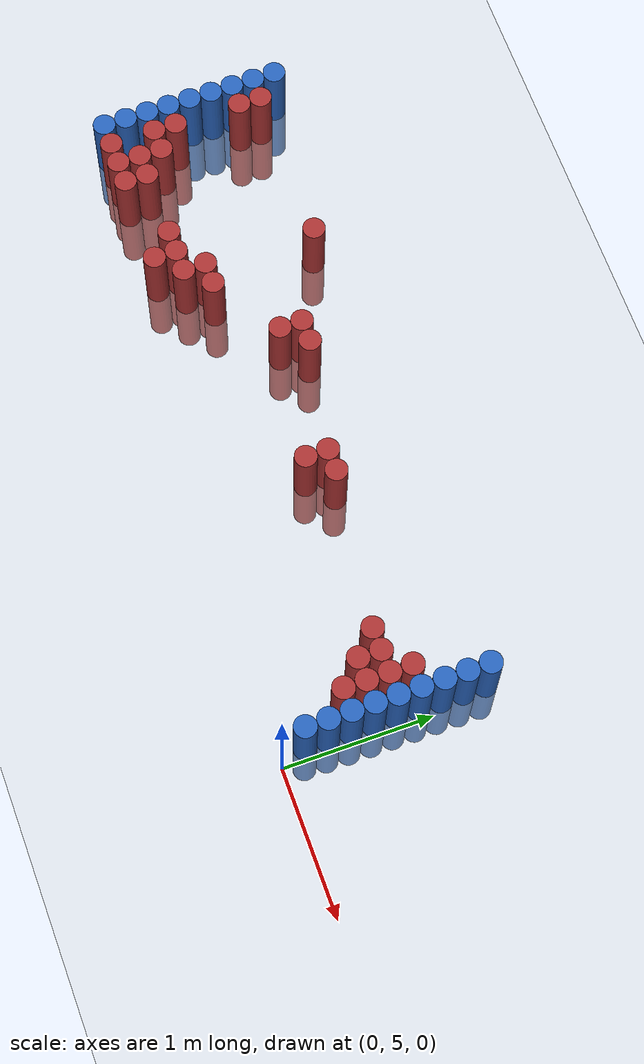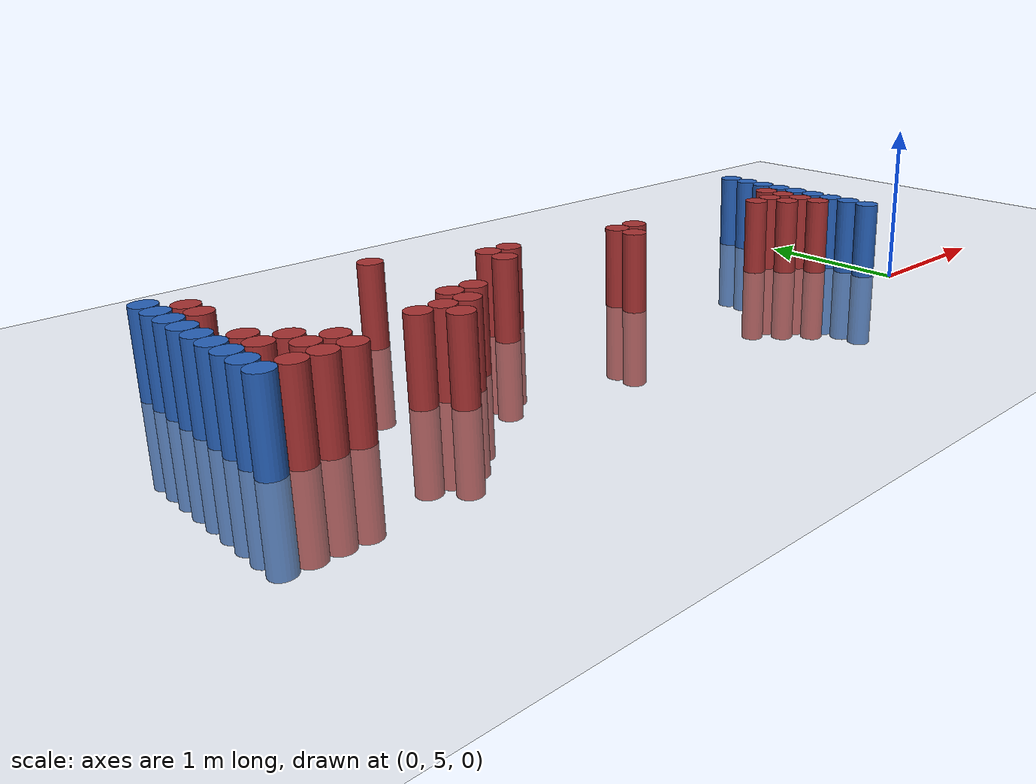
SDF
<sdf version="1.6">
 <world name="default">
  <model name="ground_plane">
   <static>1</static>
   <link name="link">
    <collision name="collision">
     <geometry><plane><normal>0 0 1</normal><size>100 100</size></plane></geometry>
     <surface><friction><ode><mu>100</mu><mu2>50</mu2></ode></friction></surface>
    </collision>
    <visual name="visual">
     <cast_shadows>0</cast_shadows>
     <geometry><plane><normal>0 0 1</normal><size>100 100</size></plane></geometry>
     <material>
      <script><uri>file://media/materials/scripts/gazebo.material</uri><name>Gazebo/Grey</name></script>
     </material>
    </visual>
   </link>
  </model>
  <model name="unit_cylinder_97">
   <static>1</static>
   <pose>-4.425000 5.325000 0.000000 0.000000 0.000000 0.000000</pose>
   <link name="link">
    <inertial>
     <mass>1</mass>
     <inertia><ixx>0.145833</ixx><ixy>0</ixy><ixz>0</ixz><iyy>0.145833</iyy><iyz>0</iyz><izz>0.125</izz></inertia>
    </inertial>
    <collision name="collision">
     <geometry><cylinder><radius>0.075000</radius><length>1</length></cylinder></geometry>
    </collision>
    <visual name="visual">
     <geometry><cylinder><radius>0.075000</radius><length>1</length></cylinder></geometry>
     <material>
      <ambient>0.152000 0.379000 0.720000 1</ambient>
      <diffuse>0.152000 0.379000 0.720000 1</diffuse>
     </material>
     <material>
      <script><name>Gazebo/Grey</name><uri>file://media/materials/scripts/gazebo.material</uri></script>
     </material>
    </visual>
   </link>
  </model>
  <model name="unit_cylinder_98">
   <static>1</static>
   <pose>-4.425000 5.475000 0.000000 0.000000 0.000000 0.000000</pose>
   <link name="link">
    <inertial>
     <mass>1</mass>
     <inertia><ixx>0.145833</ixx><ixy>0</ixy><ixz>0</ixz><iyy>0.145833</iyy><iyz>0</iyz><izz>0.125</izz></inertia>
    </inertial>
    <collision name="collision">
     <geometry><cylinder><radius>0.075000</radius><length>1</length></cylinder></geometry>
    </collision>
    <visual name="visual">
     <geometry><cylinder><radius>0.075000</radius><length>1</length></cylinder></geometry>
     <material>
      <ambient>0.152000 0.379000 0.720000 1</ambient>
      <diffuse>0.152000 0.379000 0.720000 1</diffuse>
     </material>
     <material>
      <script><name>Gazebo/Grey</name><uri>file://media/materials/scripts/gazebo.material</uri></script>
     </material>
    </visual>
   </link>
  </model>
  <model name="unit_cylinder_99">
   <static>1</static>
   <pose>-4.425000 5.625000 0.000000 0.000000 0.000000 0.000000</pose>
   <link name="link">
    <inertial>
     <mass>1</mass>
     <inertia><ixx>0.145833</ixx><ixy>0</ixy><ixz>0</ixz><iyy>0.145833</iyy><iyz>0</iyz><izz>0.125</izz></inertia>
    </inertial>
    <collision name="collision">
     <geometry><cylinder><radius>0.075000</radius><length>1</length></cylinder></geometry>
    </collision>
    <visual name="visual">
     <geometry><cylinder><radius>0.075000</radius><length>1</length></cylinder></geometry>
     <material>
      <ambient>0.152000 0.379000 0.720000 1</ambient>
      <diffuse>0.152000 0.379000 0.720000 1</diffuse>
     </material>
     <material>
      <script><name>Gazebo/Grey</name><uri>file://media/materials/scripts/gazebo.material</uri></script>
     </material>
    </visual>
   </link>
  </model>
  <model name="unit_cylinder_100">
   <static>1</static>
   <pose>-4.425000 5.775000 0.000000 0.000000 0.000000 0.000000</pose>
   <link name="link">
    <inertial>
     <mass>1</mass>
     <inertia><ixx>0.145833</ixx><ixy>0</ixy><ixz>0</ixz><iyy>0.145833</iyy><iyz>0</iyz><izz>0.125</izz></inertia>
    </inertial>
    <collision name="collision">
     <geometry><cylinder><radius>0.075000</radius><length>1</length></cylinder></geometry>
    </collision>
    <visual name="visual">
     <geometry><cylinder><radius>0.075000</radius><length>1</length></cylinder></geometry>
     <material>
      <ambient>0.152000 0.379000 0.720000 1</ambient>
      <diffuse>0.152000 0.379000 0.720000 1</diffuse>
     </material>
     <material>
      <script><name>Gazebo/Grey</name><uri>file://media/materials/scripts/gazebo.material</uri></script>
     </material>
    </visual>
   </link>
  </model>
  <model name="unit_cylinder_101">
   <static>1</static>
   <pose>-4.425000 5.925000 0.000000 0.000000 0.000000 0.000000</pose>
   <link name="link">
    <inertial>
     <mass>1</mass>
     <inertia><ixx>0.145833</ixx><ixy>0</ixy><ixz>0</ixz><iyy>0.145833</iyy><iyz>0</iyz><izz>0.125</izz></inertia>
    </inertial>
    <collision name="collision">
     <geometry><cylinder><radius>0.075000</radius><length>1</length></cylinder></geometry>
    </collision>
    <visual name="visual">
     <geometry><cylinder><radius>0.075000</radius><length>1</length></cylinder></geometry>
     <material>
      <ambient>0.152000 0.379000 0.720000 1</ambient>
      <diffuse>0.152000 0.379000 0.720000 1</diffuse>
     </material>
     <material>
      <script><name>Gazebo/Grey</name><uri>file://media/materials/scripts/gazebo.material</uri></script>
     </material>
    </visual>
   </link>
  </model>
  <model name="unit_cylinder_102">
   <static>1</static>
   <pose>-4.425000 6.075000 0.000000 0.000000 0.000000 0.000000</pose>
   <link name="link">
    <inertial>
     <mass>1</mass>
     <inertia><ixx>0.145833</ixx><ixy>0</ixy><ixz>0</ixz><iyy>0.145833</iyy><iyz>0</iyz><izz>0.125</izz></inertia>
    </inertial>
    <collision name="collision">
     <geometry><cylinder><radius>0.075000</radius><length>1</length></cylinder></geometry>
    </collision>
    <visual name="visual">
     <geometry><cylinder><radius>0.075000</radius><length>1</length></cylinder></geometry>
     <material>
      <ambient>0.152000 0.379000 0.720000 1</ambient>
      <diffuse>0.152000 0.379000 0.720000 1</diffuse>
     </material>
     <material>
      <script><name>Gazebo/Grey</name><uri>file://media/materials/scripts/gazebo.material</uri></script>
     </material>
    </visual>
   </link>
  </model>
  <model name="unit_cylinder_103">
   <static>1</static>
   <pose>-4.425000 6.225000 0.000000 0.000000 0.000000 0.000000</pose>
   <link name="link">
    <inertial>
     <mass>1</mass>
     <inertia><ixx>0.145833</ixx><ixy>0</ixy><ixz>0</ixz><iyy>0.145833</iyy><iyz>0</iyz><izz>0.125</izz></inertia>
    </inertial>
    <collision name="collision">
     <geometry><cylinder><radius>0.075000</radius><length>1</length></cylinder></geometry>
    </collision>
    <visual name="visual">
     <geometry><cylinder><radius>0.075000</radius><length>1</length></cylinder></geometry>
     <material>
      <ambient>0.152000 0.379000 0.720000 1</ambient>
      <diffuse>0.152000 0.379000 0.720000 1</diffuse>
     </material>
     <material>
      <script><name>Gazebo/Grey</name><uri>file://media/materials/scripts/gazebo.material</uri></script>
     </material>
    </visual>
   </link>
  </model>
  <model name="unit_cylinder_104">
   <static>1</static>
   <pose>-4.425000 6.375000 0.000000 0.000000 0.000000 0.000000</pose>
   <link name="link">
    <inertial>
     <mass>1</mass>
     <inertia><ixx>0.145833</ixx><ixy>0</ixy><ixz>0</ixz><iyy>0.145833</iyy><iyz>0</iyz><izz>0.125</izz></inertia>
    </inertial>
    <collision name="collision">
     <geometry><cylinder><radius>0.075000</radius><length>1</length></cylinder></geometry>
    </collision>
    <visual name="visual">
     <geometry><cylinder><radius>0.075000</radius><length>1</length></cylinder></geometry>
     <material>
      <ambient>0.152000 0.379000 0.720000 1</ambient>
      <diffuse>0.152000 0.379000 0.720000 1</diffuse>
     </material>
     <material>
      <script><name>Gazebo/Grey</name><uri>file://media/materials/scripts/gazebo.material</uri></script>
     </material>
    </visual>
   </link>
  </model>
  <model name="unit_cylinder_105">
   <static>1</static>
   <pose>-4.425000 6.525000 0.000000 0.000000 0.000000 0.000000</pose>
   <link name="link">
    <inertial>
     <mass>1</mass>
     <inertia><ixx>0.145833</ixx><ixy>0</ixy><ixz>0</ixz><iyy>0.145833</iyy><iyz>0</iyz><izz>0.125</izz></inertia>
    </inertial>
    <collision name="collision">
     <geometry><cylinder><radius>0.075000</radius><length>1</length></cylinder></geometry>
    </collision>
    <visual name="visual">
     <geometry><cylinder><radius>0.075000</radius><length>1</length></cylinder></geometry>
     <material>
      <ambient>0.152000 0.379000 0.720000 1</ambient>
      <diffuse>0.152000 0.379000 0.720000 1</diffuse>
     </material>
     <material>
      <script><name>Gazebo/Grey</name><uri>file://media/materials/scripts/gazebo.material</uri></script>
     </material>
    </visual>
   </link>
  </model>
  <model name="unit_cylinder_127">
   <static>1</static>
   <pose>-4.275000 5.325000 0.000000 0.000000 0.000000 0.000000</pose>
   <link name="link">
    <inertial>
     <mass>1</mass>
     <inertia><ixx>0.145833</ixx><ixy>0</ixy><ixz>0</ixz><iyy>0.145833</iyy><iyz>0</iyz><izz>0.125</izz></inertia>
    </inertial>
    <collision name="collision">
     <geometry><cylinder><radius>0.075000</radius><length>1</length></cylinder></geometry>
    </collision>
    <visual name="visual">
     <geometry><cylinder><radius>0.075000</radius><length>1</length></cylinder></geometry>
     <material>
      <ambient>0.648000 0.192000 0.192000 1</ambient>
      <diffuse>0.648000 0.192000 0.192000 1</diffuse>
     </material>
     <material>
      <script><name>Gazebo/Grey</name><uri>file://media/materials/scripts/gazebo.material</uri></script>
     </material>
    </visual>
   </link>
  </model>
  <model name="unit_cylinder_128">
   <static>1</static>
   <pose>-4.275000 5.625000 0.000000 0.000000 0.000000 0.000000</pose>
   <link name="link">
    <inertial>
     <mass>1</mass>
     <inertia><ixx>0.145833</ixx><ixy>0</ixy><ixz>0</ixz><iyy>0.145833</iyy><iyz>0</iyz><izz>0.125</izz></inertia>
    </inertial>
    <collision name="collision">
     <geometry><cylinder><radius>0.075000</radius><length>1</length></cylinder></geometry>
    </collision>
    <visual name="visual">
     <geometry><cylinder><radius>0.075000</radius><length>1</length></cylinder></geometry>
     <material>
      <ambient>0.648000 0.192000 0.192000 1</ambient>
      <diffuse>0.648000 0.192000 0.192000 1</diffuse>
     </material>
     <material>
      <script><name>Gazebo/Grey</name><uri>file://media/materials/scripts/gazebo.material</uri></script>
     </material>
    </visual>
   </link>
  </model>
  <model name="unit_cylinder_129">
   <static>1</static>
   <pose>-4.275000 5.775000 0.000000 0.000000 0.000000 0.000000</pose>
   <link name="link">
    <inertial>
     <mass>1</mass>
     <inertia><ixx>0.145833</ixx><ixy>0</ixy><ixz>0</ixz><iyy>0.145833</iyy><iyz>0</iyz><izz>0.125</izz></inertia>
    </inertial>
    <collision name="collision">
     <geometry><cylinder><radius>0.075000</radius><length>1</length></cylinder></geometry>
    </collision>
    <visual name="visual">
     <geometry><cylinder><radius>0.075000</radius><length>1</length></cylinder></geometry>
     <material>
      <ambient>0.648000 0.192000 0.192000 1</ambient>
      <diffuse>0.648000 0.192000 0.192000 1</diffuse>
     </material>
     <material>
      <script><name>Gazebo/Grey</name><uri>file://media/materials/scripts/gazebo.material</uri></script>
     </material>
    </visual>
   </link>
  </model>
  <model name="unit_cylinder_130">
   <static>1</static>
   <pose>-4.275000 6.225000 0.000000 0.000000 0.000000 0.000000</pose>
   <link name="link">
    <inertial>
     <mass>1</mass>
     <inertia><ixx>0.145833</ixx><ixy>0</ixy><ixz>0</ixz><iyy>0.145833</iyy><iyz>0</iyz><izz>0.125</izz></inertia>
    </inertial>
    <collision name="collision">
     <geometry><cylinder><radius>0.075000</radius><length>1</length></cylinder></geometry>
    </collision>
    <visual name="visual">
     <geometry><cylinder><radius>0.075000</radius><length>1</length></cylinder></geometry>
     <material>
      <ambient>0.648000 0.192000 0.192000 1</ambient>
      <diffuse>0.648000 0.192000 0.192000 1</diffuse>
     </material>
     <material>
      <script><name>Gazebo/Grey</name><uri>file://media/materials/scripts/gazebo.material</uri></script>
     </material>
    </visual>
   </link>
  </model>
  <model name="unit_cylinder_131">
   <static>1</static>
   <pose>-4.275000 6.375000 0.000000 0.000000 0.000000 0.000000</pose>
   <link name="link">
    <inertial>
     <mass>1</mass>
     <inertia><ixx>0.145833</ixx><ixy>0</ixy><ixz>0</ixz><iyy>0.145833</iyy><iyz>0</iyz><izz>0.125</izz></inertia>
    </inertial>
    <collision name="collision">
     <geometry><cylinder><radius>0.075000</radius><length>1</length></cylinder></geometry>
    </collision>
    <visual name="visual">
     <geometry><cylinder><radius>0.075000</radius><length>1</length></cylinder></geometry>
     <material>
      <ambient>0.648000 0.192000 0.192000 1</ambient>
      <diffuse>0.648000 0.192000 0.192000 1</diffuse>
     </material>
     <material>
      <script><name>Gazebo/Grey</name><uri>file://media/materials/scripts/gazebo.material</uri></script>
     </material>
    </visual>
   </link>
  </model>
  <model name="unit_cylinder_144">
   <static>1</static>
   <pose>-4.125000 5.325000 0.000000 0.000000 0.000000 0.000000</pose>
   <link name="link">
    <inertial>
     <mass>1</mass>
     <inertia><ixx>0.145833</ixx><ixy>0</ixy><ixz>0</ixz><iyy>0.145833</iyy><iyz>0</iyz><izz>0.125</izz></inertia>
    </inertial>
    <collision name="collision">
     <geometry><cylinder><radius>0.075000</radius><length>1</length></cylinder></geometry>
    </collision>
    <visual name="visual">
     <geometry><cylinder><radius>0.075000</radius><length>1</length></cylinder></geometry>
     <material>
      <ambient>0.648000 0.192000 0.192000 1</ambient>
      <diffuse>0.648000 0.192000 0.192000 1</diffuse>
     </material>
     <material>
      <script><name>Gazebo/Grey</name><uri>file://media/materials/scripts/gazebo.material</uri></script>
     </material>
    </visual>
   </link>
  </model>
  <model name="unit_cylinder_145">
   <static>1</static>
   <pose>-4.125000 5.475000 0.000000 0.000000 0.000000 0.000000</pose>
   <link name="link">
    <inertial>
     <mass>1</mass>
     <inertia><ixx>0.145833</ixx><ixy>0</ixy><ixz>0</ixz><iyy>0.145833</iyy><iyz>0</iyz><izz>0.125</izz></inertia>
    </inertial>
    <collision name="collision">
     <geometry><cylinder><radius>0.075000</radius><length>1</length></cylinder></geometry>
    </collision>
    <visual name="visual">
     <geometry><cylinder><radius>0.075000</radius><length>1</length></cylinder></geometry>
     <material>
      <ambient>0.648000 0.192000 0.192000 1</ambient>
      <diffuse>0.648000 0.192000 0.192000 1</diffuse>
     </material>
     <material>
      <script><name>Gazebo/Grey</name><uri>file://media/materials/scripts/gazebo.material</uri></script>
     </material>
    </visual>
   </link>
  </model>
  <model name="unit_cylinder_146">
   <static>1</static>
   <pose>-4.125000 5.625000 0.000000 0.000000 0.000000 0.000000</pose>
   <link name="link">
    <inertial>
     <mass>1</mass>
     <inertia><ixx>0.145833</ixx><ixy>0</ixy><ixz>0</ixz><iyy>0.145833</iyy><iyz>0</iyz><izz>0.125</izz></inertia>
    </inertial>
    <collision name="collision">
     <geometry><cylinder><radius>0.075000</radius><length>1</length></cylinder></geometry>
    </collision>
    <visual name="visual">
     <geometry><cylinder><radius>0.075000</radius><length>1</length></cylinder></geometry>
     <material>
      <ambient>0.648000 0.192000 0.192000 1</ambient>
      <diffuse>0.648000 0.192000 0.192000 1</diffuse>
     </material>
     <material>
      <script><name>Gazebo/Grey</name><uri>file://media/materials/scripts/gazebo.material</uri></script>
     </material>
    </visual>
   </link>
  </model>
  <model name="unit_cylinder_156">
   <static>1</static>
   <pose>-3.975000 5.325000 0.000000 0.000000 0.000000 0.000000</pose>
   <link name="link">
    <inertial>
     <mass>1</mass>
     <inertia><ixx>0.145833</ixx><ixy>0</ixy><ixz>0</ixz><iyy>0.145833</iyy><iyz>0</iyz><izz>0.125</izz></inertia>
    </inertial>
    <collision name="collision">
     <geometry><cylinder><radius>0.075000</radius><length>1</length></cylinder></geometry>
    </collision>
    <visual name="visual">
     <geometry><cylinder><radius>0.075000</radius><length>1</length></cylinder></geometry>
     <material>
      <ambient>0.648000 0.192000 0.192000 1</ambient>
      <diffuse>0.648000 0.192000 0.192000 1</diffuse>
     </material>
     <material>
      <script><name>Gazebo/Grey</name><uri>file://media/materials/scripts/gazebo.material</uri></script>
     </material>
    </visual>
   </link>
  </model>
  <model name="unit_cylinder_157">
   <static>1</static>
   <pose>-3.975000 5.475000 0.000000 0.000000 0.000000 0.000000</pose>
   <link name="link">
    <inertial>
     <mass>1</mass>
     <inertia><ixx>0.145833</ixx><ixy>0</ixy><ixz>0</ixz><iyy>0.145833</iyy><iyz>0</iyz><izz>0.125</izz></inertia>
    </inertial>
    <collision name="collision">
     <geometry><cylinder><radius>0.075000</radius><length>1</length></cylinder></geometry>
    </collision>
    <visual name="visual">
     <geometry><cylinder><radius>0.075000</radius><length>1</length></cylinder></geometry>
     <material>
      <ambient>0.648000 0.192000 0.192000 1</ambient>
      <diffuse>0.648000 0.192000 0.192000 1</diffuse>
     </material>
     <material>
      <script><name>Gazebo/Grey</name><uri>file://media/materials/scripts/gazebo.material</uri></script>
     </material>
    </visual>
   </link>
  </model>
  <model name="unit_cylinder_160">
   <static>1</static>
   <pose>-3.525000 5.475000 0.000000 0.000000 0.000000 0.000000</pose>
   <link name="link">
    <inertial>
     <mass>1</mass>
     <inertia><ixx>0.145833</ixx><ixy>0</ixy><ixz>0</ixz><iyy>0.145833</iyy><iyz>0</iyz><izz>0.125</izz></inertia>
    </inertial>
    <collision name="collision">
     <geometry><cylinder><radius>0.075000</radius><length>1</length></cylinder></geometry>
    </collision>
    <visual name="visual">
     <geometry><cylinder><radius>0.075000</radius><length>1</length></cylinder></geometry>
     <material>
      <ambient>0.648000 0.192000 0.192000 1</ambient>
      <diffuse>0.648000 0.192000 0.192000 1</diffuse>
     </material>
     <material>
      <script><name>Gazebo/Grey</name><uri>file://media/materials/scripts/gazebo.material</uri></script>
     </material>
    </visual>
   </link>
  </model>
  <model name="unit_cylinder_161">
   <static>1</static>
   <pose>-3.375000 5.325000 0.000000 0.000000 0.000000 0.000000</pose>
   <link name="link">
    <inertial>
     <mass>1</mass>
     <inertia><ixx>0.145833</ixx><ixy>0</ixy><ixz>0</ixz><iyy>0.145833</iyy><iyz>0</iyz><izz>0.125</izz></inertia>
    </inertial>
    <collision name="collision">
     <geometry><cylinder><radius>0.075000</radius><length>1</length></cylinder></geometry>
    </collision>
    <visual name="visual">
     <geometry><cylinder><radius>0.075000</radius><length>1</length></cylinder></geometry>
     <material>
      <ambient>0.648000 0.192000 0.192000 1</ambient>
      <diffuse>0.648000 0.192000 0.192000 1</diffuse>
     </material>
     <material>
      <script><name>Gazebo/Grey</name><uri>file://media/materials/scripts/gazebo.material</uri></script>
     </material>
    </visual>
   </link>
  </model>
  <model name="unit_cylinder_162">
   <static>1</static>
   <pose>-3.375000 5.475000 0.000000 0.000000 0.000000 0.000000</pose>
   <link name="link">
    <inertial>
     <mass>1</mass>
     <inertia><ixx>0.145833</ixx><ixy>0</ixy><ixz>0</ixz><iyy>0.145833</iyy><iyz>0</iyz><izz>0.125</izz></inertia>
    </inertial>
    <collision name="collision">
     <geometry><cylinder><radius>0.075000</radius><length>1</length></cylinder></geometry>
    </collision>
    <visual name="visual">
     <geometry><cylinder><radius>0.075000</radius><length>1</length></cylinder></geometry>
     <material>
      <ambient>0.648000 0.192000 0.192000 1</ambient>
      <diffuse>0.648000 0.192000 0.192000 1</diffuse>
     </material>
     <material>
      <script><name>Gazebo/Grey</name><uri>file://media/materials/scripts/gazebo.material</uri></script>
     </material>
    </visual>
   </link>
  </model>
  <model name="unit_cylinder_165">
   <static>1</static>
   <pose>-3.225000 5.475000 0.000000 0.000000 0.000000 0.000000</pose>
   <link name="link">
    <inertial>
     <mass>1</mass>
     <inertia><ixx>0.145833</ixx><ixy>0</ixy><ixz>0</ixz><iyy>0.145833</iyy><iyz>0</iyz><izz>0.125</izz></inertia>
    </inertial>
    <collision name="collision">
     <geometry><cylinder><radius>0.075000</radius><length>1</length></cylinder></geometry>
    </collision>
    <visual name="visual">
     <geometry><cylinder><radius>0.075000</radius><length>1</length></cylinder></geometry>
     <material>
      <ambient>0.648000 0.192000 0.192000 1</ambient>
      <diffuse>0.648000 0.192000 0.192000 1</diffuse>
     </material>
     <material>
      <script><name>Gazebo/Grey</name><uri>file://media/materials/scripts/gazebo.material</uri></script>
     </material>
    </visual>
   </link>
  </model>
  <model name="unit_cylinder_166">
   <static>1</static>
   <pose>-3.225000 5.625000 0.000000 0.000000 0.000000 0.000000</pose>
   <link name="link">
    <inertial>
     <mass>1</mass>
     <inertia><ixx>0.145833</ixx><ixy>0</ixy><ixz>0</ixz><iyy>0.145833</iyy><iyz>0</iyz><izz>0.125</izz></inertia>
    </inertial>
    <collision name="collision">
     <geometry><cylinder><radius>0.075000</radius><length>1</length></cylinder></geometry>
    </collision>
    <visual name="visual">
     <geometry><cylinder><radius>0.075000</radius><length>1</length></cylinder></geometry>
     <material>
      <ambient>0.648000 0.192000 0.192000 1</ambient>
      <diffuse>0.648000 0.192000 0.192000 1</diffuse>
     </material>
     <material>
      <script><name>Gazebo/Grey</name><uri>file://media/materials/scripts/gazebo.material</uri></script>
     </material>
    </visual>
   </link>
  </model>
  <model name="unit_cylinder_167">
   <static>1</static>
   <pose>-3.225000 6.375000 0.000000 0.000000 0.000000 0.000000</pose>
   <link name="link">
    <inertial>
     <mass>1</mass>
     <inertia><ixx>0.145833</ixx><ixy>0</ixy><ixz>0</ixz><iyy>0.145833</iyy><iyz>0</iyz><izz>0.125</izz></inertia>
    </inertial>
    <collision name="collision">
     <geometry><cylinder><radius>0.075000</radius><length>1</length></cylinder></geometry>
    </collision>
    <visual name="visual">
     <geometry><cylinder><radius>0.075000</radius><length>1</length></cylinder></geometry>
     <material>
      <ambient>0.648000 0.192000 0.192000 1</ambient>
      <diffuse>0.648000 0.192000 0.192000 1</diffuse>
     </material>
     <material>
      <script><name>Gazebo/Grey</name><uri>file://media/materials/scripts/gazebo.material</uri></script>
     </material>
    </visual>
   </link>
  </model>
  <model name="unit_cylinder_173">
   <static>1</static>
   <pose>-3.075000 5.625000 0.000000 0.000000 0.000000 0.000000</pose>
   <link name="link">
    <inertial>
     <mass>1</mass>
     <inertia><ixx>0.145833</ixx><ixy>0</ixy><ixz>0</ixz><iyy>0.145833</iyy><iyz>0</iyz><izz>0.125</izz></inertia>
    </inertial>
    <collision name="collision">
     <geometry><cylinder><radius>0.075000</radius><length>1</length></cylinder></geometry>
    </collision>
    <visual name="visual">
     <geometry><cylinder><radius>0.075000</radius><length>1</length></cylinder></geometry>
     <material>
      <ambient>0.648000 0.192000 0.192000 1</ambient>
      <diffuse>0.648000 0.192000 0.192000 1</diffuse>
     </material>
     <material>
      <script><name>Gazebo/Grey</name><uri>file://media/materials/scripts/gazebo.material</uri></script>
     </material>
    </visual>
   </link>
  </model>
  <model name="unit_cylinder_185">
   <static>1</static>
   <pose>-2.625000 5.925000 0.000000 0.000000 0.000000 0.000000</pose>
   <link name="link">
    <inertial>
     <mass>1</mass>
     <inertia><ixx>0.145833</ixx><ixy>0</ixy><ixz>0</ixz><iyy>0.145833</iyy><iyz>0</iyz><izz>0.125</izz></inertia>
    </inertial>
    <collision name="collision">
     <geometry><cylinder><radius>0.075000</radius><length>1</length></cylinder></geometry>
    </collision>
    <visual name="visual">
     <geometry><cylinder><radius>0.075000</radius><length>1</length></cylinder></geometry>
     <material>
      <ambient>0.648000 0.192000 0.192000 1</ambient>
      <diffuse>0.648000 0.192000 0.192000 1</diffuse>
     </material>
     <material>
      <script><name>Gazebo/Grey</name><uri>file://media/materials/scripts/gazebo.material</uri></script>
     </material>
    </visual>
   </link>
  </model>
  <model name="unit_cylinder_186">
   <static>1</static>
   <pose>-2.625000 6.075000 0.000000 0.000000 0.000000 0.000000</pose>
   <link name="link">
    <inertial>
     <mass>1</mass>
     <inertia><ixx>0.145833</ixx><ixy>0</ixy><ixz>0</ixz><iyy>0.145833</iyy><iyz>0</iyz><izz>0.125</izz></inertia>
    </inertial>
    <collision name="collision">
     <geometry><cylinder><radius>0.075000</radius><length>1</length></cylinder></geometry>
    </collision>
    <visual name="visual">
     <geometry><cylinder><radius>0.075000</radius><length>1</length></cylinder></geometry>
     <material>
      <ambient>0.648000 0.192000 0.192000 1</ambient>
      <diffuse>0.648000 0.192000 0.192000 1</diffuse>
     </material>
     <material>
      <script><name>Gazebo/Grey</name><uri>file://media/materials/scripts/gazebo.material</uri></script>
     </material>
    </visual>
   </link>
  </model>
  <model name="unit_cylinder_188">
   <static>1</static>
   <pose>-2.475000 6.075000 0.000000 0.000000 0.000000 0.000000</pose>
   <link name="link">
    <inertial>
     <mass>1</mass>
     <inertia><ixx>0.145833</ixx><ixy>0</ixy><ixz>0</ixz><iyy>0.145833</iyy><iyz>0</iyz><izz>0.125</izz></inertia>
    </inertial>
    <collision name="collision">
     <geometry><cylinder><radius>0.075000</radius><length>1</length></cylinder></geometry>
    </collision>
    <visual name="visual">
     <geometry><cylinder><radius>0.075000</radius><length>1</length></cylinder></geometry>
     <material>
      <ambient>0.648000 0.192000 0.192000 1</ambient>
      <diffuse>0.648000 0.192000 0.192000 1</diffuse>
     </material>
     <material>
      <script><name>Gazebo/Grey</name><uri>file://media/materials/scripts/gazebo.material</uri></script>
     </material>
    </visual>
   </link>
  </model>
  <model name="unit_cylinder_200">
   <static>1</static>
   <pose>-1.725000 5.775000 0.000000 0.000000 0.000000 0.000000</pose>
   <link name="link">
    <inertial>
     <mass>1</mass>
     <inertia><ixx>0.145833</ixx><ixy>0</ixy><ixz>0</ixz><iyy>0.145833</iyy><iyz>0</iyz><izz>0.125</izz></inertia>
    </inertial>
    <collision name="collision">
     <geometry><cylinder><radius>0.075000</radius><length>1</length></cylinder></geometry>
    </collision>
    <visual name="visual">
     <geometry><cylinder><radius>0.075000</radius><length>1</length></cylinder></geometry>
     <material>
      <ambient>0.648000 0.192000 0.192000 1</ambient>
      <diffuse>0.648000 0.192000 0.192000 1</diffuse>
     </material>
     <material>
      <script><name>Gazebo/Grey</name><uri>file://media/materials/scripts/gazebo.material</uri></script>
     </material>
    </visual>
   </link>
  </model>
  <model name="unit_cylinder_201">
   <static>1</static>
   <pose>-1.725000 5.925000 0.000000 0.000000 0.000000 0.000000</pose>
   <link name="link">
    <inertial>
     <mass>1</mass>
     <inertia><ixx>0.145833</ixx><ixy>0</ixy><ixz>0</ixz><iyy>0.145833</iyy><iyz>0</iyz><izz>0.125</izz></inertia>
    </inertial>
    <collision name="collision">
     <geometry><cylinder><radius>0.075000</radius><length>1</length></cylinder></geometry>
    </collision>
    <visual name="visual">
     <geometry><cylinder><radius>0.075000</radius><length>1</length></cylinder></geometry>
     <material>
      <ambient>0.648000 0.192000 0.192000 1</ambient>
      <diffuse>0.648000 0.192000 0.192000 1</diffuse>
     </material>
     <material>
      <script><name>Gazebo/Grey</name><uri>file://media/materials/scripts/gazebo.material</uri></script>
     </material>
    </visual>
   </link>
  </model>
  <model name="unit_cylinder_204">
   <static>1</static>
   <pose>-1.575000 5.925000 0.000000 0.000000 0.000000 0.000000</pose>
   <link name="link">
    <inertial>
     <mass>1</mass>
     <inertia><ixx>0.145833</ixx><ixy>0</ixy><ixz>0</ixz><iyy>0.145833</iyy><iyz>0</iyz><izz>0.125</izz></inertia>
    </inertial>
    <collision name="collision">
     <geometry><cylinder><radius>0.075000</radius><length>1</length></cylinder></geometry>
    </collision>
    <visual name="visual">
     <geometry><cylinder><radius>0.075000</radius><length>1</length></cylinder></geometry>
     <material>
      <ambient>0.648000 0.192000 0.192000 1</ambient>
      <diffuse>0.648000 0.192000 0.192000 1</diffuse>
     </material>
     <material>
      <script><name>Gazebo/Grey</name><uri>file://media/materials/scripts/gazebo.material</uri></script>
     </material>
    </visual>
   </link>
  </model>
  <model name="unit_cylinder_232">
   <static>1</static>
   <pose>-0.525000 5.775000 0.000000 0.000000 0.000000 0.000000</pose>
   <link name="link">
    <inertial>
     <mass>1</mass>
     <inertia><ixx>0.145833</ixx><ixy>0</ixy><ixz>0</ixz><iyy>0.145833</iyy><iyz>0</iyz><izz>0.125</izz></inertia>
    </inertial>
    <collision name="collision">
     <geometry><cylinder><radius>0.075000</radius><length>1</length></cylinder></geometry>
    </collision>
    <visual name="visual">
     <geometry><cylinder><radius>0.075000</radius><length>1</length></cylinder></geometry>
     <material>
      <ambient>0.648000 0.192000 0.192000 1</ambient>
      <diffuse>0.648000 0.192000 0.192000 1</diffuse>
     </material>
     <material>
      <script><name>Gazebo/Grey</name><uri>file://media/materials/scripts/gazebo.material</uri></script>
     </material>
    </visual>
   </link>
  </model>
  <model name="unit_cylinder_238">
   <static>1</static>
   <pose>-0.375000 5.625000 0.000000 0.000000 0.000000 0.000000</pose>
   <link name="link">
    <inertial>
     <mass>1</mass>
     <inertia><ixx>0.145833</ixx><ixy>0</ixy><ixz>0</ixz><iyy>0.145833</iyy><iyz>0</iyz><izz>0.125</izz></inertia>
    </inertial>
    <collision name="collision">
     <geometry><cylinder><radius>0.075000</radius><length>1</length></cylinder></geometry>
    </collision>
    <visual name="visual">
     <geometry><cylinder><radius>0.075000</radius><length>1</length></cylinder></geometry>
     <material>
      <ambient>0.648000 0.192000 0.192000 1</ambient>
      <diffuse>0.648000 0.192000 0.192000 1</diffuse>
     </material>
     <material>
      <script><name>Gazebo/Grey</name><uri>file://media/materials/scripts/gazebo.material</uri></script>
     </material>
    </visual>
   </link>
  </model>
  <model name="unit_cylinder_239">
   <static>1</static>
   <pose>-0.375000 5.775000 0.000000 0.000000 0.000000 0.000000</pose>
   <link name="link">
    <inertial>
     <mass>1</mass>
     <inertia><ixx>0.145833</ixx><ixy>0</ixy><ixz>0</ixz><iyy>0.145833</iyy><iyz>0</iyz><izz>0.125</izz></inertia>
    </inertial>
    <collision name="collision">
     <geometry><cylinder><radius>0.075000</radius><length>1</length></cylinder></geometry>
    </collision>
    <visual name="visual">
     <geometry><cylinder><radius>0.075000</radius><length>1</length></cylinder></geometry>
     <material>
      <ambient>0.648000 0.192000 0.192000 1</ambient>
      <diffuse>0.648000 0.192000 0.192000 1</diffuse>
     </material>
     <material>
      <script><name>Gazebo/Grey</name><uri>file://media/materials/scripts/gazebo.material</uri></script>
     </material>
    </visual>
   </link>
  </model>
  <model name="unit_cylinder_249">
   <static>1</static>
   <pose>-0.225000 5.475000 0.000000 0.000000 0.000000 0.000000</pose>
   <link name="link">
    <inertial>
     <mass>1</mass>
     <inertia><ixx>0.145833</ixx><ixy>0</ixy><ixz>0</ixz><iyy>0.145833</iyy><iyz>0</iyz><izz>0.125</izz></inertia>
    </inertial>
    <collision name="collision">
     <geometry><cylinder><radius>0.075000</radius><length>1</length></cylinder></geometry>
    </collision>
    <visual name="visual">
     <geometry><cylinder><radius>0.075000</radius><length>1</length></cylinder></geometry>
     <material>
      <ambient>0.648000 0.192000 0.192000 1</ambient>
      <diffuse>0.648000 0.192000 0.192000 1</diffuse>
     </material>
     <material>
      <script><name>Gazebo/Grey</name><uri>file://media/materials/scripts/gazebo.material</uri></script>
     </material>
    </visual>
   </link>
  </model>
  <model name="unit_cylinder_250">
   <static>1</static>
   <pose>-0.225000 5.625000 0.000000 0.000000 0.000000 0.000000</pose>
   <link name="link">
    <inertial>
     <mass>1</mass>
     <inertia><ixx>0.145833</ixx><ixy>0</ixy><ixz>0</ixz><iyy>0.145833</iyy><iyz>0</iyz><izz>0.125</izz></inertia>
    </inertial>
    <collision name="collision">
     <geometry><cylinder><radius>0.075000</radius><length>1</length></cylinder></geometry>
    </collision>
    <visual name="visual">
     <geometry><cylinder><radius>0.075000</radius><length>1</length></cylinder></geometry>
     <material>
      <ambient>0.648000 0.192000 0.192000 1</ambient>
      <diffuse>0.648000 0.192000 0.192000 1</diffuse>
     </material>
     <material>
      <script><name>Gazebo/Grey</name><uri>file://media/materials/scripts/gazebo.material</uri></script>
     </material>
    </visual>
   </link>
  </model>
  <model name="unit_cylinder_251">
   <static>1</static>
   <pose>-0.225000 5.775000 0.000000 0.000000 0.000000 0.000000</pose>
   <link name="link">
    <inertial>
     <mass>1</mass>
     <inertia><ixx>0.145833</ixx><ixy>0</ixy><ixz>0</ixz><iyy>0.145833</iyy><iyz>0</iyz><izz>0.125</izz></inertia>
    </inertial>
    <collision name="collision">
     <geometry><cylinder><radius>0.075000</radius><length>1</length></cylinder></geometry>
    </collision>
    <visual name="visual">
     <geometry><cylinder><radius>0.075000</radius><length>1</length></cylinder></geometry>
     <material>
      <ambient>0.648000 0.192000 0.192000 1</ambient>
      <diffuse>0.648000 0.192000 0.192000 1</diffuse>
     </material>
     <material>
      <script><name>Gazebo/Grey</name><uri>file://media/materials/scripts/gazebo.material</uri></script>
     </material>
    </visual>
   </link>
  </model>
  <model name="unit_cylinder_252">
   <static>1</static>
   <pose>-0.225000 5.925000 0.000000 0.000000 0.000000 0.000000</pose>
   <link name="link">
    <inertial>
     <mass>1</mass>
     <inertia><ixx>0.145833</ixx><ixy>0</ixy><ixz>0</ixz><iyy>0.145833</iyy><iyz>0</iyz><izz>0.125</izz></inertia>
    </inertial>
    <collision name="collision">
     <geometry><cylinder><radius>0.075000</radius><length>1</length></cylinder></geometry>
    </collision>
    <visual name="visual">
     <geometry><cylinder><radius>0.075000</radius><length>1</length></cylinder></geometry>
     <material>
      <ambient>0.648000 0.192000 0.192000 1</ambient>
      <diffuse>0.648000 0.192000 0.192000 1</diffuse>
     </material>
     <material>
      <script><name>Gazebo/Grey</name><uri>file://media/materials/scripts/gazebo.material</uri></script>
     </material>
    </visual>
   </link>
  </model>
  <model name="unit_cylinder_261">
   <static>1</static>
   <pose>-0.075000 5.175000 0.000000 0.000000 0.000000 0.000000</pose>
   <link name="link">
    <inertial>
     <mass>1</mass>
     <inertia><ixx>0.145833</ixx><ixy>0</ixy><ixz>0</ixz><iyy>0.145833</iyy><iyz>0</iyz><izz>0.125</izz></inertia>
    </inertial>
    <collision name="collision">
     <geometry><cylinder><radius>0.075000</radius><length>1</length></cylinder></geometry>
    </collision>
    <visual name="visual">
     <geometry><cylinder><radius>0.075000</radius><length>1</length></cylinder></geometry>
     <material>
      <ambient>0.152000 0.379000 0.720000 1</ambient>
      <diffuse>0.152000 0.379000 0.720000 1</diffuse>
     </material>
     <material>
      <script><name>Gazebo/Grey</name><uri>file://media/materials/scripts/gazebo.material</uri></script>
     </material>
    </visual>
   </link>
  </model>
  <model name="unit_cylinder_262">
   <static>1</static>
   <pose>-0.075000 5.325000 0.000000 0.000000 0.000000 0.000000</pose>
   <link name="link">
    <inertial>
     <mass>1</mass>
     <inertia><ixx>0.145833</ixx><ixy>0</ixy><ixz>0</ixz><iyy>0.145833</iyy><iyz>0</iyz><izz>0.125</izz></inertia>
    </inertial>
    <collision name="collision">
     <geometry><cylinder><radius>0.075000</radius><length>1</length></cylinder></geometry>
    </collision>
    <visual name="visual">
     <geometry><cylinder><radius>0.075000</radius><length>1</length></cylinder></geometry>
     <material>
      <ambient>0.152000 0.379000 0.720000 1</ambient>
      <diffuse>0.152000 0.379000 0.720000 1</diffuse>
     </material>
     <material>
      <script><name>Gazebo/Grey</name><uri>file://media/materials/scripts/gazebo.material</uri></script>
     </material>
    </visual>
   </link>
  </model>
  <model name="unit_cylinder_263">
   <static>1</static>
   <pose>-0.075000 5.475000 0.000000 0.000000 0.000000 0.000000</pose>
   <link name="link">
    <inertial>
     <mass>1</mass>
     <inertia><ixx>0.145833</ixx><ixy>0</ixy><ixz>0</ixz><iyy>0.145833</iyy><iyz>0</iyz><izz>0.125</izz></inertia>
    </inertial>
    <collision name="collision">
     <geometry><cylinder><radius>0.075000</radius><length>1</length></cylinder></geometry>
    </collision>
    <visual name="visual">
     <geometry><cylinder><radius>0.075000</radius><length>1</length></cylinder></geometry>
     <material>
      <ambient>0.152000 0.379000 0.720000 1</ambient>
      <diffuse>0.152000 0.379000 0.720000 1</diffuse>
     </material>
     <material>
      <script><name>Gazebo/Grey</name><uri>file://media/materials/scripts/gazebo.material</uri></script>
     </material>
    </visual>
   </link>
  </model>
  <model name="unit_cylinder_264">
   <static>1</static>
   <pose>-0.075000 5.625000 0.000000 0.000000 0.000000 0.000000</pose>
   <link name="link">
    <inertial>
     <mass>1</mass>
     <inertia><ixx>0.145833</ixx><ixy>0</ixy><ixz>0</ixz><iyy>0.145833</iyy><iyz>0</iyz><izz>0.125</izz></inertia>
    </inertial>
    <collision name="collision">
     <geometry><cylinder><radius>0.075000</radius><length>1</length></cylinder></geometry>
    </collision>
    <visual name="visual">
     <geometry><cylinder><radius>0.075000</radius><length>1</length></cylinder></geometry>
     <material>
      <ambient>0.152000 0.379000 0.720000 1</ambient>
      <diffuse>0.152000 0.379000 0.720000 1</diffuse>
     </material>
     <material>
      <script><name>Gazebo/Grey</name><uri>file://media/materials/scripts/gazebo.material</uri></script>
     </material>
    </visual>
   </link>
  </model>
  <model name="unit_cylinder_265">
   <static>1</static>
   <pose>-0.075000 5.775000 0.000000 0.000000 0.000000 0.000000</pose>
   <link name="link">
    <inertial>
     <mass>1</mass>
     <inertia><ixx>0.145833</ixx><ixy>0</ixy><ixz>0</ixz><iyy>0.145833</iyy><iyz>0</iyz><izz>0.125</izz></inertia>
    </inertial>
    <collision name="collision">
     <geometry><cylinder><radius>0.075000</radius><length>1</length></cylinder></geometry>
    </collision>
    <visual name="visual">
     <geometry><cylinder><radius>0.075000</radius><length>1</length></cylinder></geometry>
     <material>
      <ambient>0.152000 0.379000 0.720000 1</ambient>
      <diffuse>0.152000 0.379000 0.720000 1</diffuse>
     </material>
     <material>
      <script><name>Gazebo/Grey</name><uri>file://media/materials/scripts/gazebo.material</uri></script>
     </material>
    </visual>
   </link>
  </model>
  <model name="unit_cylinder_266">
   <static>1</static>
   <pose>-0.075000 5.925000 0.000000 0.000000 0.000000 0.000000</pose>
   <link name="link">
    <inertial>
     <mass>1</mass>
     <inertia><ixx>0.145833</ixx><ixy>0</ixy><ixz>0</ixz><iyy>0.145833</iyy><iyz>0</iyz><izz>0.125</izz></inertia>
    </inertial>
    <collision name="collision">
     <geometry><cylinder><radius>0.075000</radius><length>1</length></cylinder></geometry>
    </collision>
    <visual name="visual">
     <geometry><cylinder><radius>0.075000</radius><length>1</length></cylinder></geometry>
     <material>
      <ambient>0.152000 0.379000 0.720000 1</ambient>
      <diffuse>0.152000 0.379000 0.720000 1</diffuse>
     </material>
     <material>
      <script><name>Gazebo/Grey</name><uri>file://media/materials/scripts/gazebo.material</uri></script>
     </material>
    </visual>
   </link>
  </model>
  <model name="unit_cylinder_267">
   <static>1</static>
   <pose>-0.075000 6.075000 0.000000 0.000000 0.000000 0.000000</pose>
   <link name="link">
    <inertial>
     <mass>1</mass>
     <inertia><ixx>0.145833</ixx><ixy>0</ixy><ixz>0</ixz><iyy>0.145833</iyy><iyz>0</iyz><izz>0.125</izz></inertia>
    </inertial>
    <collision name="collision">
     <geometry><cylinder><radius>0.075000</radius><length>1</length></cylinder></geometry>
    </collision>
    <visual name="visual">
     <geometry><cylinder><radius>0.075000</radius><length>1</length></cylinder></geometry>
     <material>
      <ambient>0.152000 0.379000 0.720000 1</ambient>
      <diffuse>0.152000 0.379000 0.720000 1</diffuse>
     </material>
     <material>
      <script><name>Gazebo/Grey</name><uri>file://media/materials/scripts/gazebo.material</uri></script>
     </material>
    </visual>
   </link>
  </model>
  <model name="unit_cylinder_268">
   <static>1</static>
   <pose>-0.075000 6.225000 0.000000 0.000000 0.000000 0.000000</pose>
   <link name="link">
    <inertial>
     <mass>1</mass>
     <inertia><ixx>0.145833</ixx><ixy>0</ixy><ixz>0</ixz><iyy>0.145833</iyy><iyz>0</iyz><izz>0.125</izz></inertia>
    </inertial>
    <collision name="collision">
     <geometry><cylinder><radius>0.075000</radius><length>1</length></cylinder></geometry>
    </collision>
    <visual name="visual">
     <geometry><cylinder><radius>0.075000</radius><length>1</length></cylinder></geometry>
     <material>
      <ambient>0.152000 0.379000 0.720000 1</ambient>
      <diffuse>0.152000 0.379000 0.720000 1</diffuse>
     </material>
     <material>
      <script><name>Gazebo/Grey</name><uri>file://media/materials/scripts/gazebo.material</uri></script>
     </material>
    </visual>
   </link>
  </model>
  <model name="unit_cylinder_269">
   <static>1</static>
   <pose>-0.075000 6.375000 0.000000 0.000000 0.000000 0.000000</pose>
   <link name="link">
    <inertial>
     <mass>1</mass>
     <inertia><ixx>0.145833</ixx><ixy>0</ixy><ixz>0</ixz><iyy>0.145833</iyy><iyz>0</iyz><izz>0.125</izz></inertia>
    </inertial>
    <collision name="collision">
     <geometry><cylinder><radius>0.075000</radius><length>1</length></cylinder></geometry>
    </collision>
    <visual name="visual">
     <geometry><cylinder><radius>0.075000</radius><length>1</length></cylinder></geometry>
     <material>
      <ambient>0.152000 0.379000 0.720000 1</ambient>
      <diffuse>0.152000 0.379000 0.720000 1</diffuse>
     </material>
     <material>
      <script><name>Gazebo/Grey</name><uri>file://media/materials/scripts/gazebo.material</uri></script>
     </material>
    </visual>
   </link>
  </model>
 </world>
</sdf>
